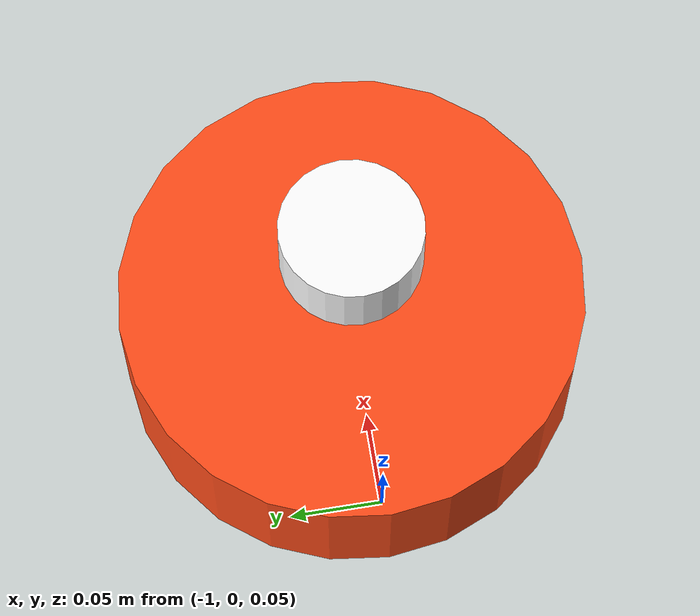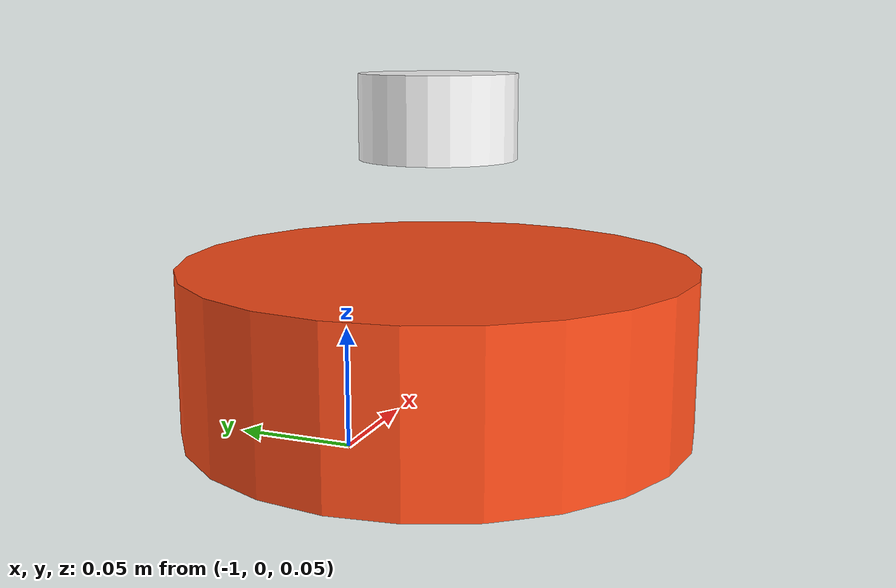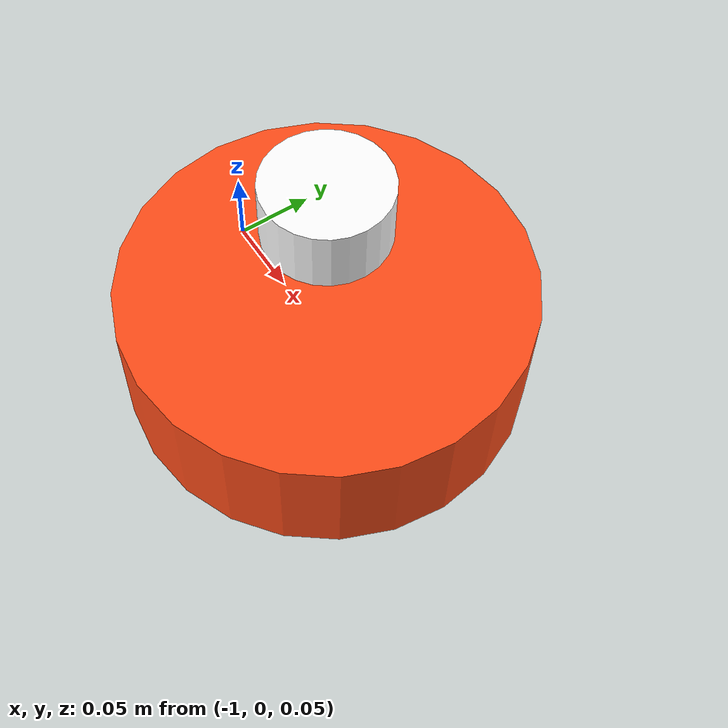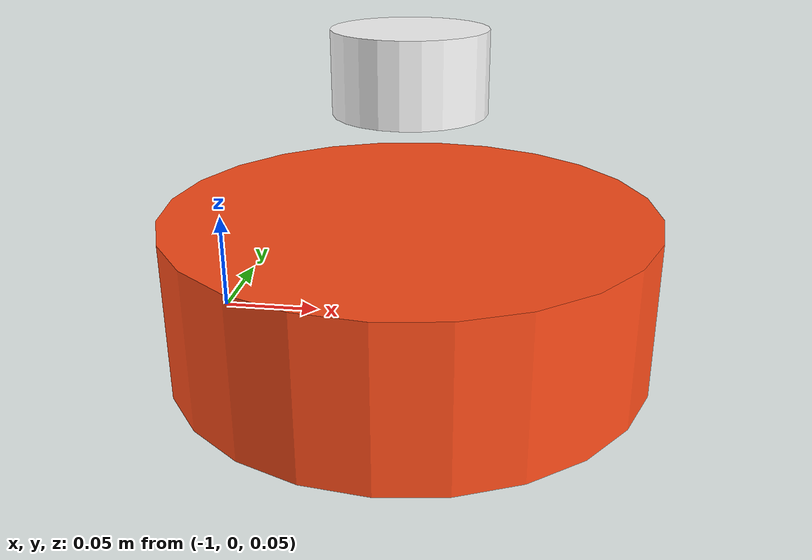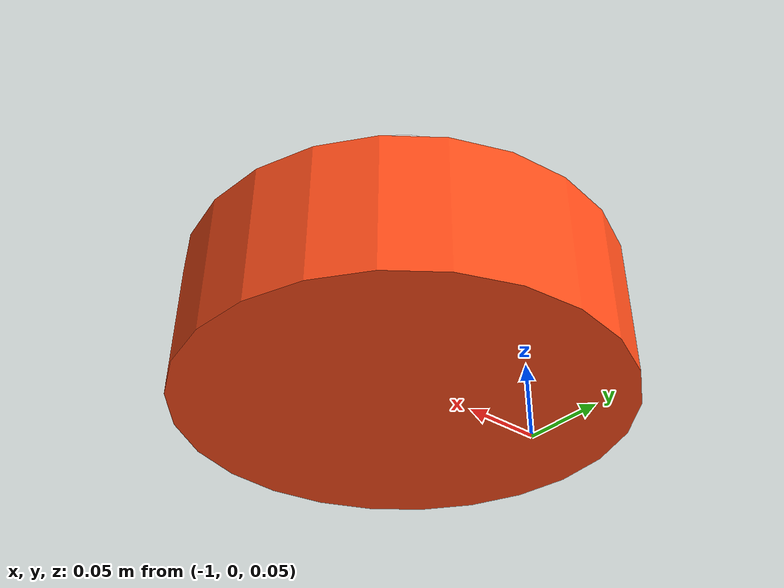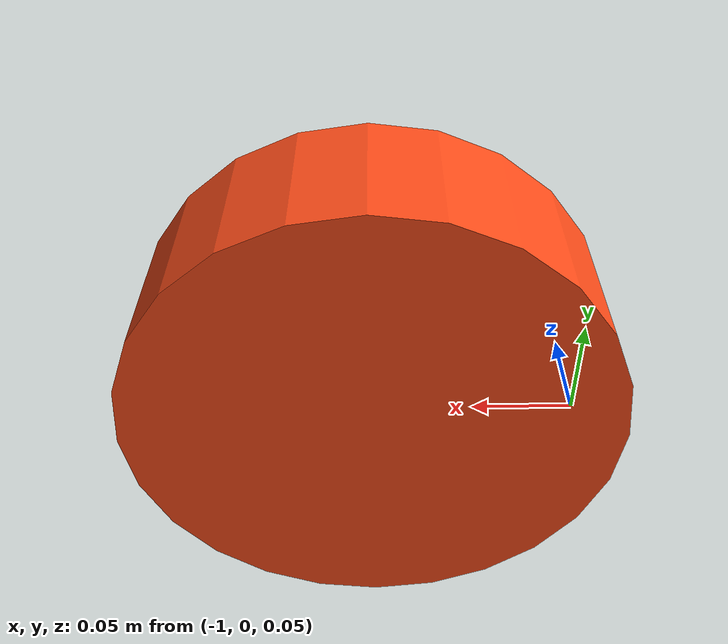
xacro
<?xml version="1.0"?>
<robot xmlns:xacro="http://www.ros.org/wiki/xacro" >

    <material name="white">
        <color rgba="1 1 1 1" />
    </material>

    <material name="orange">
        <color rgba="1 0.3 0.1 1"/>
    </material>

    <material name="blue">
        <color rgba="0.2 0.2 1 1"/>
    </material>

    <material name="black">
        <color rgba="0 0 0 1"/>
    </material>

    <!-- BASE_FOOTPRINT LINK -->

    <link name="base_footprint">
    </link>

    <joint name="base_footprint_joint" type="fixed">
        <parent link="base_footprint"/>
        <child link="base_link"/>
        <origin xyz="-0.9 0 0.069" rpy="0 0 0"/>
    </joint>

    <!-- BASE LINK -->

    <link name="base_link">
        <visual>
            <origin xyz="0 0 0"/>
            <geometry>
                <cylinder length="0.08" radius="0.125"/>
            </geometry>
            <material name="orange"/>
        </visual>
        <collision>
            <origin xyz="0 0 0"/>
            <geometry>
                <cylinder length="0.08" radius="0.125"/>
            </geometry>
        </collision>
    </link>

    <!-- LIDAR -->
    <joint name="lidar_joint" type="fixed">
        <parent link="base_link"/>
        <child link="laser"/>
        <origin xyz="0.0 0.0 0.11" rpy="0 0 0"/>
    </joint>

    <link name="laser">
        <visual>
            <origin xyz="0 0 0"/>
            <geometry>
                <cylinder length="0.040" radius="0.0375"/>
            </geometry>
            <material name="white"/>
        </visual>
        <collision>
            <origin xyz="0 0 0"/>
            <geometry>
                <cylinder length="0.040" radius="0.0375"/>
            </geometry>
        </collision>
    </link>

    <!-- imu -->
    <joint name="imu_joint" type="fixed">
        <parent link="base_link"/>
        <child link="imu_link"/>
        <origin xyz="0.005 0.038 0" rpy="0 0 0"/>
    </joint>

    <link name="imu_link">
        <visual>
            <origin xyz="0 0 0"/>
            <geometry>
                <box size="0.05 0.05 0.01"/>
            </geometry>
            <material name="orange"/>
        </visual>
        <collision>
            <origin xyz="0 0 0"/>
            <geometry>
                <box size="0.05 0.05 0.01"/>
            </geometry>
        </collision>
    </link>

</robot>
